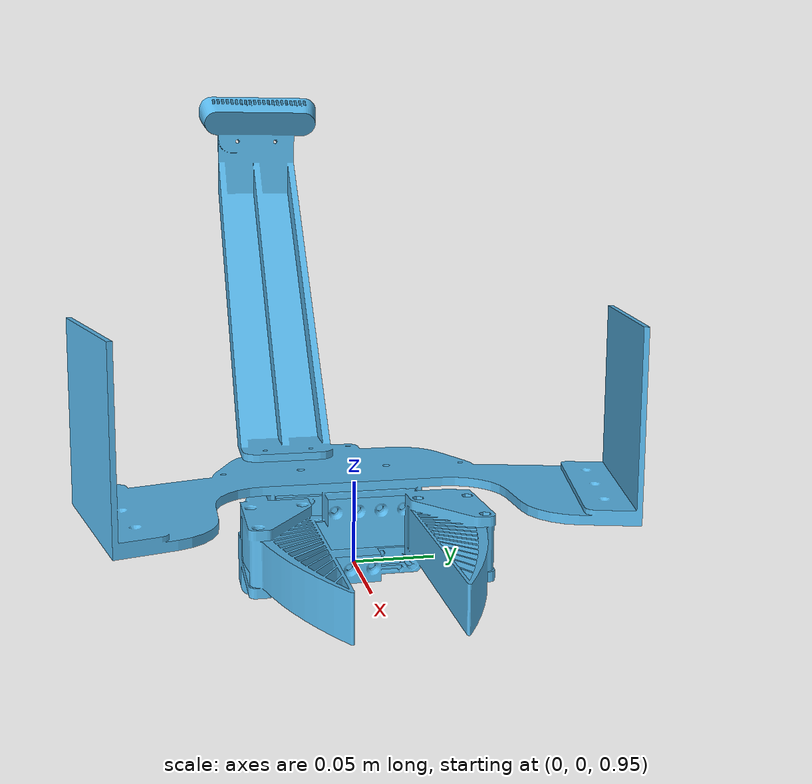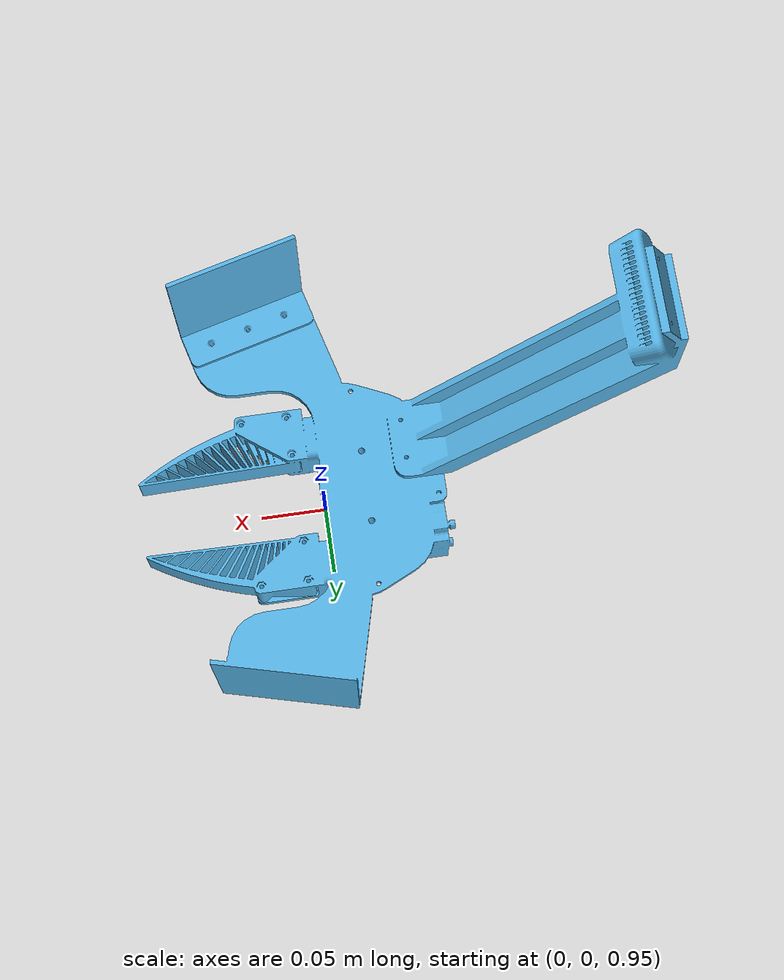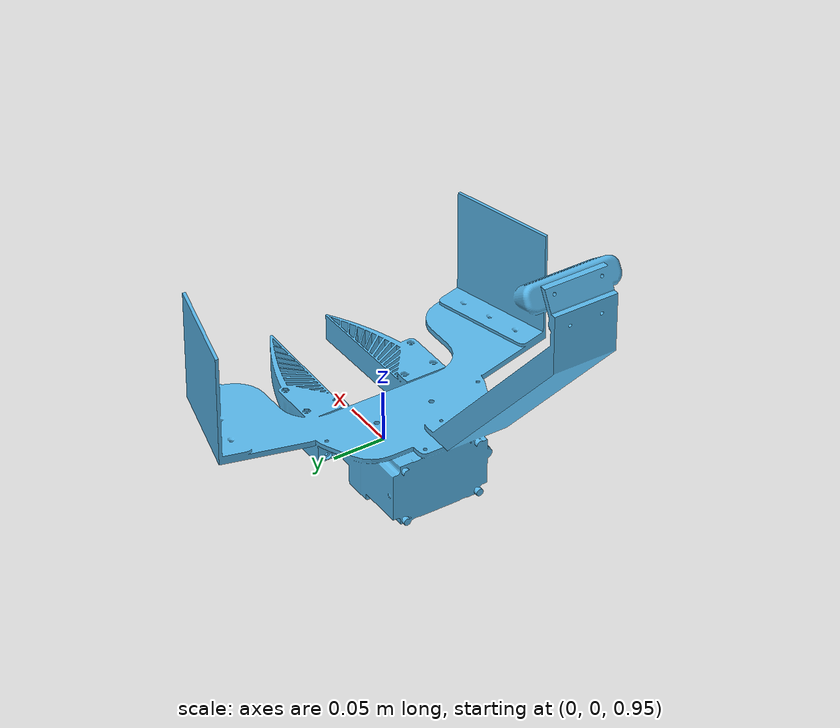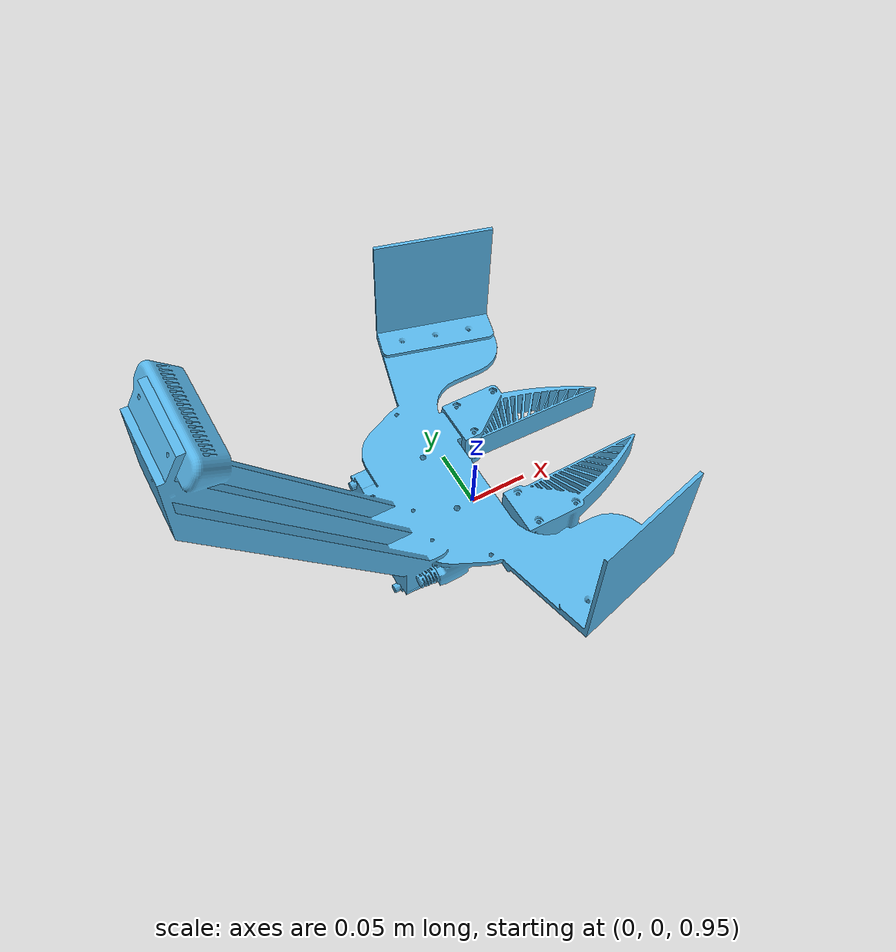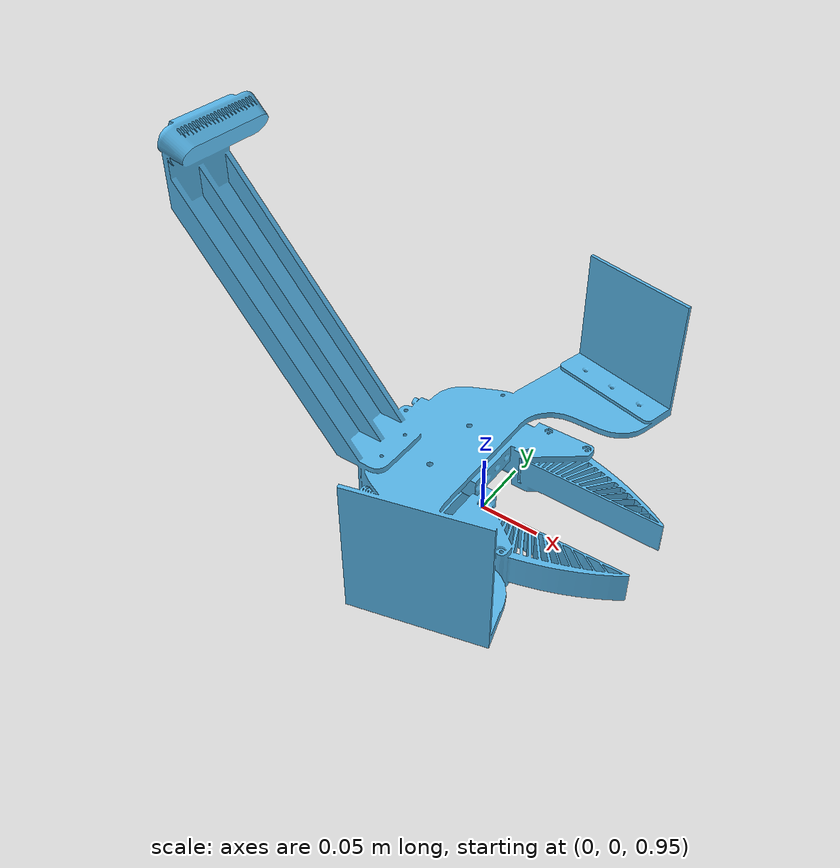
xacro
<?xml version="1.0"?>
<robot xmlns:xacro="http://ros.org/wiki/xacro"
  name="umi">

    <link name="world" />

    <link name="umi_gripper_link">
      <inertial>
        <origin xyz="0 0 0" rpy="0 0 0" />
        <mass value="0.2" />
        <inertia ixx="0.01" iyy="0.01" izz="0.01" ixy="0.0" iyz="-0.0" ixz="-0.0" />
      </inertial>
      <visual>
        <origin xyz="0 0 -0" rpy="0 0 0 " />
        <geometry>
          <mesh filename="package://umi_description/meshes/umi_gripper.dae"/>
        </geometry>
        <material name="aluminum" />
      </visual>
      <collision>
        <origin xyz="0 0 0" rpy="0 0 0" />
        <geometry>
          <mesh filename="package://umi_description/meshes/umi_gripper.STL" />
        </geometry>
      </collision>
    </link>

    <joint name="umi_gripper_world" type="fixed">
        <parent link="world" />
        <child link="umi_gripper_link" />
        <origin rpy="0 0 0" xyz="0 0 1" />
    </joint>

      <!-- gazebo中的相机视角和真是的视角有一定的偏差，默认-0.016的时候视角是正常的。-0.031的时候，物理上是对其的 -->

    <link name="aruco_link" />
    <joint name="aruco_link_2_umi_link" type="fixed">
        <parent link="umi_gripper_link" />
        <child link="aruco_link" />
        <origin rpy="0 0 -${pi/2}" xyz="-0.025 0 0" />
    </joint>

    <link name="tool_link" />
    <joint name="tool_link_2_umi_link" type="fixed">
        <parent link="umi_gripper_link" />
        <child link="tool_link" />
        <origin rpy="-${pi/2} 0 -${pi/2}" xyz="0.128 0 -0.0245" />
    </joint>

    <link name="ego_camera_color_optical_frame" />
    <joint name="ego_camera_color_optical_frame_umi_link" type="fixed">
        <parent link="umi_gripper_link" />
        <child link="ego_camera_color_optical_frame" />
        <origin rpy="-${pi/2 + 0.5} 0 -${pi/2}" xyz="-0.22 0 0.23" />
    </joint>

</robot>
